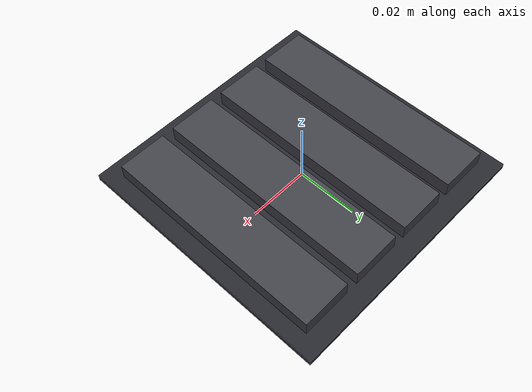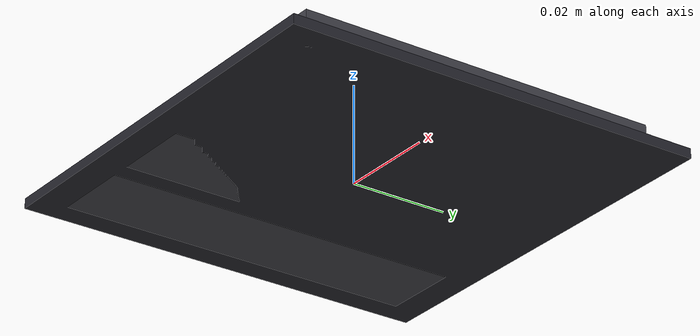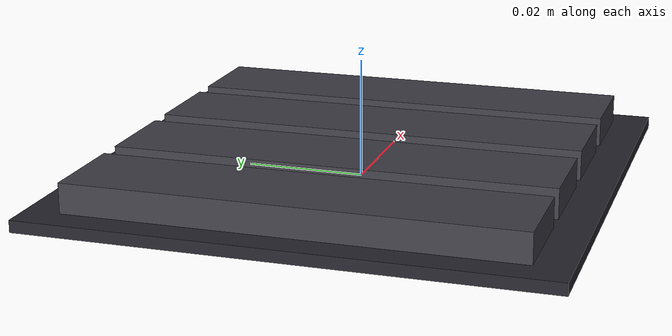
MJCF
<mujoco model="Switch_Quantity4_03">
  <asset>
    <material name="Switch_Quantity4_03_bezel" rgba="0.15 0.15 0.18 1" specular="0.75" shininess="0.85"/>
    <material name="Switch_Quantity4_03_btn1" rgba="0.25 0.25 0.28 1" specular="0.75" shininess="0.85"/>
    <material name="Switch_Quantity4_03_btn2" rgba="0.25 0.25 0.28 1" specular="0.75" shininess="0.85"/>
    <material name="Switch_Quantity4_03_btn3" rgba="0.25 0.25 0.28 1" specular="0.75" shininess="0.85"/>
    <material name="Switch_Quantity4_03_btn4" rgba="0.25 0.25 0.28 1" specular="0.75" shininess="0.85"/>
  </asset>
  <worldbody>
    <body name="Switch_Quantity4_03">
      <geom name="Switch_Quantity4_03_bezel" type="box"
            pos="0 0 0.001" size="0.043 0.043 0.001"
            material="Switch_Quantity4_03_bezel"/>
      <geom name="Switch_Quantity4_03_btn1" type="box"
            pos="-0.030 0 0.0035" size="0.008 0.037 0.0035"
            material="Switch_Quantity4_03_btn1"/>
      <geom name="Switch_Quantity4_03_btn2" type="box"
            pos="-0.010 0 0.0035" size="0.008 0.037 0.0035"
            material="Switch_Quantity4_03_btn2"/>
      <geom name="Switch_Quantity4_03_btn3" type="box"
            pos="0.010 0 0.0035" size="0.008 0.037 0.0035"
            material="Switch_Quantity4_03_btn3"/>
      <geom name="Switch_Quantity4_03_btn4" type="box"
            pos="0.030 0 0.0035" size="0.008 0.037 0.0035"
            material="Switch_Quantity4_03_btn4"/>
    </body>
  </worldbody>
</mujoco>
